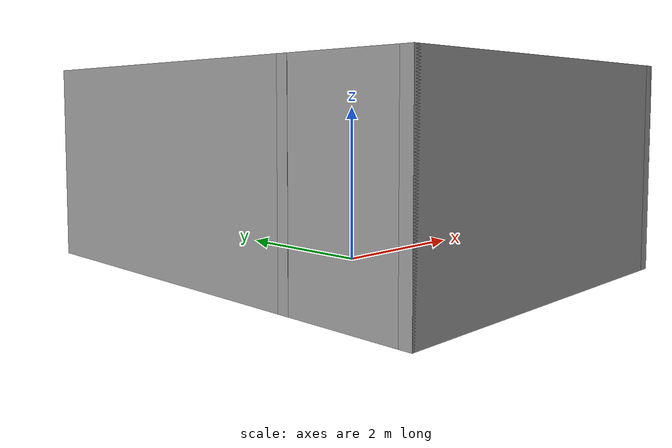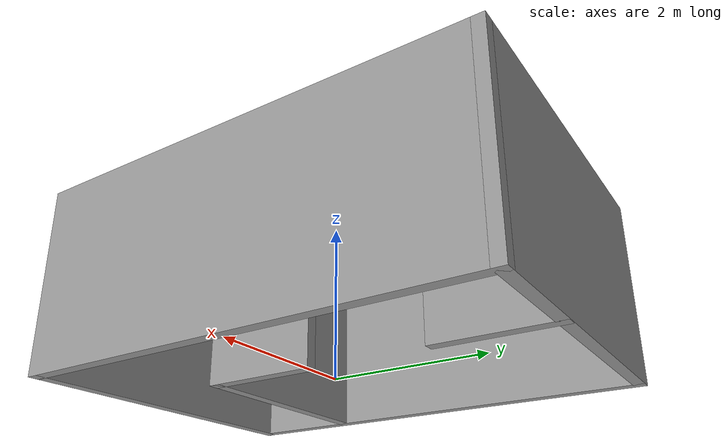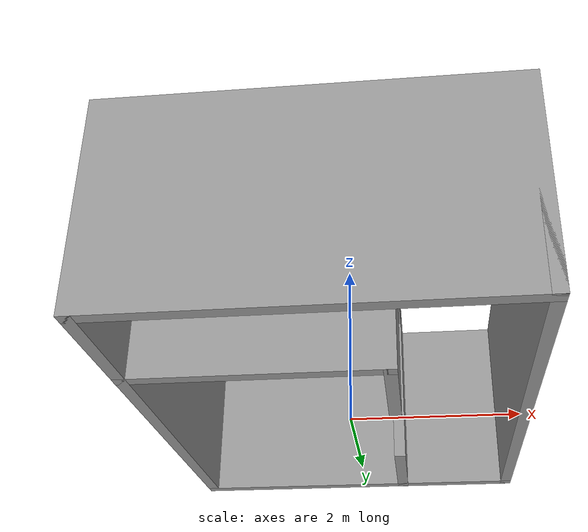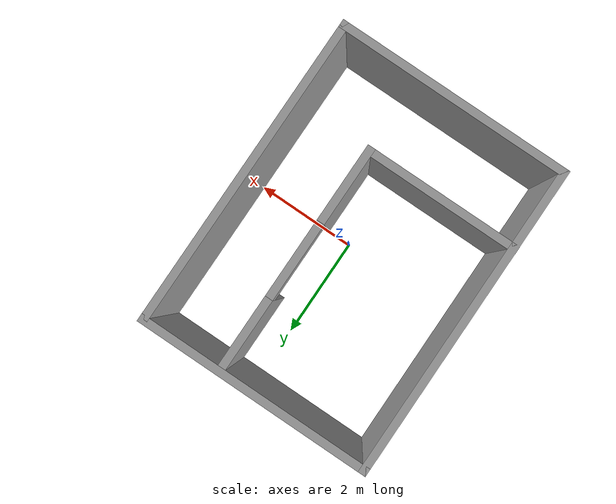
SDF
<?xml version='1.0'?>
<sdf version='1.6'>
  <model name='room'>
    <pose frame=''>-0.15015 0.033 0 0 -0 0</pose>
    <link name='Wall_0'>
      <collision name='Wall_0_Collision'>
        <geometry>
          <box>
            <size>4.572 0.15 2.5</size>
          </box>
        </geometry>
        <pose frame=''>0 0 1.25 0 -0 0</pose>
      </collision>
      <visual name='Wall_0_Visual'>
        <pose frame=''>0 0 1.25 0 -0 0</pose>
        <geometry>
          <box>
            <size>4.572 0.15 2.5</size>
          </box>
        </geometry>
        <material>
          <script>
            <uri>file://media/materials/scripts/gazebo.material</uri>
            <name>Gazebo/Grey</name>
          </script>
          <ambient>1 1 1 1</ambient>
        </material>
      </visual>
      <pose frame=''>0.00115 -2.973 0 0 -0 0</pose>
    </link>
    <link name='Wall_10'>
      <pose frame=''>0.68585 0.754075 0 0 -0 1.5708</pose>
      <visual name='Wall_10_Visual_0'>
        <pose frame=''>-1.52521 0 1.25 0 -0 0</pose>
        <geometry>
          <box>
            <size>1.52157 0.15 2.5</size>
          </box>
        </geometry>
        <material>
          <script>
            <uri>file://media/materials/scripts/gazebo.material</uri>
            <name>Gazebo/Grey</name>
          </script>
          <ambient>1 1 1 1</ambient>
        </material>
      </visual>
      <collision name='Wall_10_Collision_0'>
        <geometry>
          <box>
            <size>1.52157 0.15 2.5</size>
          </box>
        </geometry>
        <pose frame=''>-1.52521 0 1.25 0 -0 0</pose>
      </collision>
      <visual name='Wall_10_Visual_1'>
        <pose frame=''>1.52279 0 1.25 0 -0 0</pose>
        <geometry>
          <box>
            <size>1.52642 0.15 2.5</size>
          </box>
        </geometry>
        <material>
          <script>
            <uri>file://media/materials/scripts/gazebo.material</uri>
            <name>Gazebo/Grey</name>
          </script>
          <ambient>1 1 1 1</ambient>
        </material>
      </visual>
      <collision name='Wall_10_Collision_1'>
        <geometry>
          <box>
            <size>1.52642 0.15 2.5</size>
          </box>
        </geometry>
        <pose frame=''>1.52279 0 1.25 0 -0 0</pose>
      </collision>
      <visual name='Wall_10_Visual_2'>
        <pose frame=''>-0.002425 0 2.25 0 -0 0</pose>
        <geometry>
          <box>
            <size>1.524 0.15 0.5</size>
          </box>
        </geometry>
        <material>
          <script>
            <uri>file://media/materials/scripts/gazebo.material</uri>
            <name>Gazebo/Grey</name>
          </script>
          <ambient>1 1 1 1</ambient>
        </material>
      </visual>
      <collision name='Wall_10_Collision_2'>
        <geometry>
          <box>
            <size>1.524 0.15 0.5</size>
          </box>
        </geometry>
        <pose frame=''>-0.002425 0 2.25 0 -0 0</pose>
      </collision>
    </link>
    <link name='Wall_2'>
      <collision name='Wall_2_Collision'>
        <geometry>
          <box>
            <size>6.096 0.15 2.5</size>
          </box>
        </geometry>
        <pose frame=''>0 0 1.25 0 -0 0</pose>
      </collision>
      <visual name='Wall_2_Visual'>
        <pose frame=''>0 0 1.25 0 -0 0</pose>
        <geometry>
          <box>
            <size>6.096 0.15 2.5</size>
          </box>
        </geometry>
        <material>
          <script>
            <uri>file://media/materials/scripts/gazebo.material</uri>
            <name>Gazebo/Grey</name>
          </script>
          <ambient>1 1 1 1</ambient>
        </material>
      </visual>
      <pose frame=''>-2.20985 0 0 0 -0 1.5708</pose>
    </link>
    <link name='Wall_4'>
      <collision name='Wall_4_Collision'>
        <geometry>
          <box>
            <size>6.096 0.15 2.5</size>
          </box>
        </geometry>
        <pose frame=''>0 0 1.25 0 -0 0</pose>
      </collision>
      <visual name='Wall_4_Visual'>
        <pose frame=''>0 0 1.25 0 -0 0</pose>
        <geometry>
          <box>
            <size>6.096 0.15 2.5</size>
          </box>
        </geometry>
        <material>
          <script>
            <uri>file://media/materials/scripts/gazebo.material</uri>
            <name>Gazebo/Grey</name>
          </script>
          <ambient>1 1 1 1</ambient>
        </material>
      </visual>
      <pose frame=''>2.21215 0 0 0 -0 1.5708</pose>
    </link>
    <link name='Wall_6'>
      <collision name='Wall_6_Collision'>
        <geometry>
          <box>
            <size>4.572 0.15 2.5</size>
          </box>
        </geometry>
        <pose frame=''>0 0 1.25 0 -0 0</pose>
      </collision>
      <visual name='Wall_6_Visual'>
        <pose frame=''>0 0 1.25 0 -0 0</pose>
        <geometry>
          <box>
            <size>4.572 0.15 2.5</size>
          </box>
        </geometry>
        <material>
          <script>
            <uri>file://media/materials/scripts/gazebo.material</uri>
            <name>Gazebo/Grey</name>
          </script>
          <ambient>1 1 1 1</ambient>
        </material>
      </visual>
      <pose frame=''>0.00115 2.973 0 0 -0 3.14159</pose>
    </link>
    <link name='Wall_8'>
      <collision name='Wall_8_Collision'>
        <geometry>
          <box>
            <size>3.048 0.15 2.5</size>
          </box>
        </geometry>
        <pose frame=''>0 0 1.25 0 -0 0</pose>
      </collision>
      <visual name='Wall_8_Visual'>
        <pose frame=''>0 0 1.25 0 -0 0</pose>
        <geometry>
          <box>
            <size>3.048 0.15 2.5</size>
          </box>
        </geometry>
        <material>
          <script>
            <uri>file://media/materials/scripts/gazebo.material</uri>
            <name>Gazebo/Grey</name>
          </script>
          <ambient>1 1 1 1</ambient>
        </material>
      </visual>
      <pose frame=''>-0.76315 -1.45693 0 0 -0 0</pose>
    </link>
    <static>1</static>
  </model>
</sdf>
